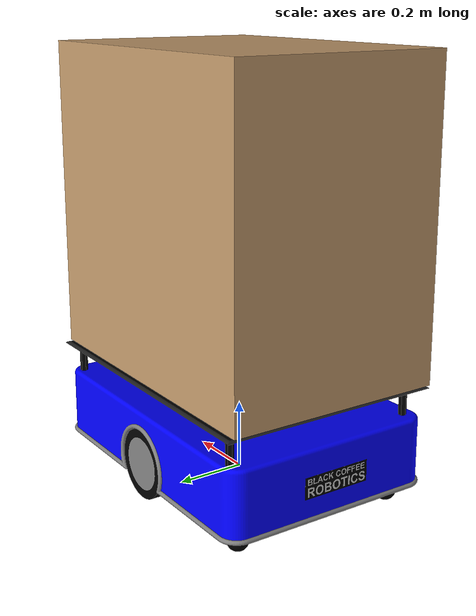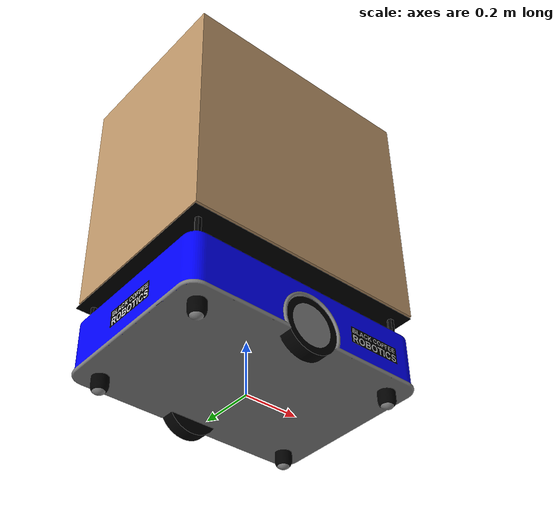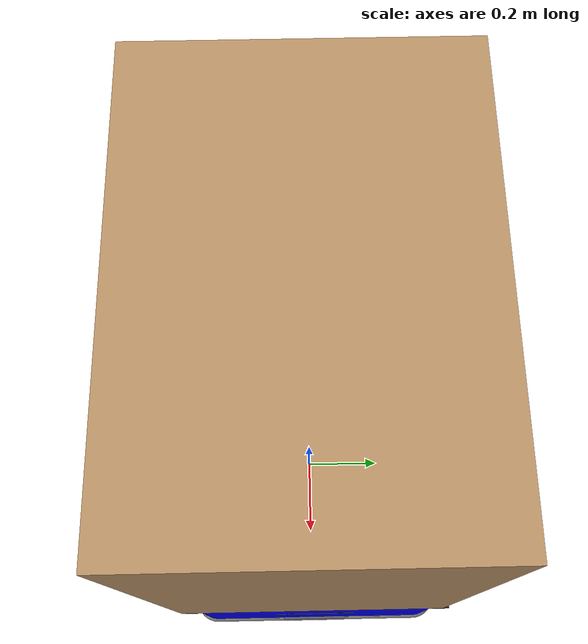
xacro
<?xml version="1.0"?>
<robot xmlns:xacro="http://www.ros.org/wiki/xacro" name="carga_bot">

    <!--................................ XACRO CONSTANTS .............................. -->

    <xacro:property name="chassis_mass" value="70"/>
    <xacro:property name="chassis_length" value="0.9"/>
    <xacro:property name="chassis_width" value="0.64"/>
    <xacro:property name="chassis_height" value="0.19"/>

    <xacro:property name="traction_wheel_mass" value="1"/>
    <xacro:property name="traction_wheel_base" value="0.88"/>
    <xacro:property name="traction_max_wheel_torque" value="20000"/>
    <xacro:property name="traction_wheel_friction" value="5.0"/>

    <xacro:property name="trolley_wheel_mass" value="0.1"/>
    <xacro:property name="trolley_track_width" value="0.54"/>
    <xacro:property name="trolley_wheel_friction" value="0.0"/>
    <xacro:property name="trolley_wheel_radius" value="0.06"/>
    <!-- a small constant -->
    <xacro:property name="eps" value="0.002"/>

    <xacro:property name="traction_wheel_radius" value="0.1"/>
    <xacro:property name="traction_wheel_width" value="0.05"/>
    <xacro:property name="traction_track_width" value="0.6"/>

    <xacro:property name="two_d_lidar_update_rate" value="30"/>
    <xacro:property name="two_d_lidar_sample_size" value="361"/>
    <xacro:property name="two_d_lidar_min_angle" value="0"/>
    <xacro:property name="two_d_lidar_max_angle" value="360"/>
    <xacro:property name="two_d_lidar_min_range" value="0.55"/>
    <xacro:property name="two_d_lidar_max_range" value="16"/>

    <xacro:property name="camera_baseline" value="0.06"/>
    <xacro:property name="camera_height" value="0.10"/>
    <xacro:property name="camera_horizontal_fov" value="60"/>

    <xacro:arg name="robot_namespace" default=""/>
    <xacro:arg name="wheel_odom_topic" default="odom" />
    <xacro:arg name="camera_enabled" default="false" />
    <xacro:arg name="stereo_camera_enabled" default="false" />
    <xacro:arg name="two_d_lidar_enabled" default="false" />
    <xacro:arg name="publish_wheel_odom_tf" default="true" />
    <xacro:arg name="conveyor_enabled" default="false"/>
    <xacro:arg name="ground_truth_frame" default="map"/>
    <xacro:arg name="sim_gazebo" default="false" />
    <xacro:arg name="sim_ign" default="false" />
    <xacro:arg name="sim_gz" default="false" />
    <xacro:arg name="odometry_source" default="world" />

    <xacro:property name="odometry_source" value="$(arg odometry_source)"/>

    <!-- ............................... LOAD MACROS ................................. -->

    <xacro:include filename="$(find carga_bot)/urdf/materials.xacro"/>
    <xacro:include filename="$(find carga_bot)/urdf/macros.xacro"/>

    <xacro:if value="$(arg sim_gazebo)">
        <xacro:include filename="$(find carga_bot)/urdf/gazebo.xacro"/>
    </xacro:if>

    <xacro:if value="$(arg sim_ign)">
        <xacro:include filename="$(find carga_bot)/urdf/ign.xacro"/>
    </xacro:if>

    <xacro:if value="$(arg sim_gz)">
        <xacro:include filename="$(find carga_bot)/urdf/gz.xacro"/>
    </xacro:if>

    <!-- ................................ BASE LINK .................................. -->
    <link name="base_footprint"/>

    <link name="base_link"/>

    <joint name="base_joint" type="fixed">
        <parent link="base_footprint"/>
        <child link="base_link"/>
        <origin xyz="0.0 0 ${chassis_height/2 + traction_wheel_radius}" rpy="0 0 0.0" />
    </joint>

    <link name="chassis_link">

        <collision>
            <origin xyz="0 0 -0.05" rpy="0 0 0" />
            <geometry>
                <box size="${chassis_length} ${chassis_width} ${chassis_height}"/>
            </geometry>
        </collision>

        <visual>
            <origin xyz="0 0 -0.205" rpy="0 0 0" />
            <geometry>
                <mesh filename="file://$(find carga_bot)/meshes/carga_bot_mesh.dae" scale="1 1 1"/>
            </geometry>
        </visual>

        <inertial>
            <mass value="${chassis_mass}" />
            <xacro:box_inertia m="${chassis_mass}" x="${chassis_length}" y="${chassis_width}" z = "${chassis_height}"/>
        </inertial>

    </link>

    <joint name="chassis_joint" type="fixed">
        <parent link="base_link"/>
        <child link="chassis_link"/>
        <origin xyz="0.0 0 0" rpy="0 0 0.0" />
    </joint>

    <!-- ................................ WHEELS ..................................... -->

    <xacro:trolley_wheel cardinality="front" dexterity="left" origin_x="${chassis_length/2}" origin_y="${trolley_track_width/2}" origin_z="-${trolley_wheel_radius+chassis_height/2}"/>
    <xacro:trolley_wheel cardinality="front" dexterity="right" origin_x="${chassis_length/2}" origin_y="-${trolley_track_width/2}" origin_z="-${trolley_wheel_radius+chassis_height/2}"/>

    <xacro:trolley_wheel cardinality="back" dexterity="left" origin_x="-${chassis_length/2}" origin_y="${trolley_track_width/2}" origin_z="-${trolley_wheel_radius+chassis_height/2}"/>
    <xacro:trolley_wheel cardinality="back" dexterity="right" origin_x="-${chassis_length/2}" origin_y="-${trolley_track_width/2}" origin_z="-${trolley_wheel_radius+chassis_height/2}"/>

    <xacro:traction_wheel cardinality="middle" dexterity="left" origin_x="0" origin_y="${traction_track_width/2}" origin_z="-${chassis_height/2+2*trolley_wheel_radius+eps-traction_wheel_radius}"/>
    <xacro:traction_wheel cardinality="middle" dexterity="right" origin_x="0" origin_y="-${traction_track_width/2}" origin_z="-${chassis_height/2+2*trolley_wheel_radius+eps-traction_wheel_radius}"/>

    <!-- ............................. 2D LIDAR ........................................ -->

    <xacro:if value="$(arg two_d_lidar_enabled)">

        <link name="two_d_lidar">
            <collision>
                <origin xyz="0 0 0" rpy="0 0 0" />
                <geometry>
                    <cylinder length="0.06" radius="0.075"/>
                </geometry>
            </collision>

            <visual>
                <origin xyz="0 0 0" rpy="0 0 0" />
                <geometry>
                    <cylinder length="0.06" radius="0.075"/>
                </geometry>
                <material name="aluminium"/>
            </visual>

            <inertial>
                <origin xyz="0 0 0" rpy="0 0 0" />
                <mass value="0.1"/>
                <xacro:cylinder_inertia m="0.1" r="0.075" h="0.06"/>
            </inertial>
        </link>

        <joint name="two_d_lidar_joint" type="fixed">
            <parent link="base_link"/>
            <child link="two_d_lidar"/>
            <origin xyz="0.0 0 0.08" rpy="0 0 0" />
        </joint>

        <gazebo reference="two_d_lidar">
            <material>Gazebo/White</material>
        </gazebo>

    </xacro:if>

    <!-- ............................. IMU ........................................ -->

    <link name="imu_frame"/>

    <joint name="imu_joint" type="fixed">
        <parent link="base_link"/>
        <child link="imu_frame"/>
        <origin xyz="0.0 0.0 0.08" rpy="0.0 0.0 0.0"/>
    </joint>

    <!-- ............................. CAMERA ........................................ -->

    <xacro:if value="$(arg camera_enabled)">

        <!-- KINECT CAMERA -->

        <link name="kinect_camera">

            <collision>
                <origin xyz="0 0 0" rpy="0 0 0" />
                <geometry>
                    <box size="0.07 0.3 0.09"/>
                </geometry>
            </collision>

            <visual>
                <origin xyz="0 0 0" rpy="0 0 0" />
                <geometry>
                    <mesh filename="file://$(find carga_bot)/meshes/kinect/d415.dae"/>
                </geometry>
                <material name="black"/>
            </visual>

            <inertial>
                <mass value="0.01"/>
                <xacro:box_inertia m="0.01" x="0.07" y="0.3" z = "0.09"/>
            </inertial>

        </link>

        <joint name="kinect_camera_joint" type="fixed">
            <origin rpy="0 0 0" xyz="${chassis_length/2} 0 ${chassis_height/7}"/>
            <parent link="base_link"/>
            <child link="kinect_camera"/>
        </joint>

        <link name="kinect_camera_optical"/>

        <joint name="kinect_camera_optical_joint" type="fixed">
            <origin xyz="0 0 0" rpy="${-pi/2} 0 ${-pi/2}"/>
            <parent link="kinect_camera"/>
            <child link="kinect_camera_optical"/>
        </joint>

    </xacro:if>

    <!-- .............................STEREO CAMERA ........................................ -->

    <xacro:if value="$(arg stereo_camera_enabled)">

        <!-- STEREO CAMERA -->

        <link name="stereo_camera">

            <collision>
                <origin xyz="0 0 0" rpy="0 0 0" />
                <geometry>
                    <box size="0.07 0.3 0.09"/>
                </geometry>
            </collision>

            <visual>
                <origin xyz="0 0 0" rpy="0 0 0" />
                <geometry>
                    <mesh filename="file://$(find carga_bot)/meshes/kinect/d415.dae"/>
                </geometry>
                <material name="black"/>
            </visual>

            <inertial>
                <mass value="0.01"/>
                <xacro:box_inertia m="0.01" x="0.07" y="0.3" z = "0.09"/>
            </inertial>

        </link>

        <joint name="stereo_camera_joint" type="fixed">
            <origin rpy="0 0 0" xyz="${chassis_length/2} 0 ${chassis_height/7}"/>
            <parent link="base_link"/>
            <child link="stereo_camera"/>
        </joint>

        <link name="stereo_camera_optical"/>

        <joint name="stereo_camera_optical_joint" type="fixed">
            <origin xyz="0 0 0" rpy="${-pi/2} 0 ${-pi/2}"/>
            <parent link="stereo_camera"/>
            <child link="stereo_camera_optical"/>
        </joint>

    </xacro:if>

    <!-- ............................. ROOF ........................................ -->

    <link name="roof_link">

        <collision>
            <origin xyz="0 0 0" rpy="0 0 0" />
            <geometry>
                <box size="${chassis_length} ${chassis_width} 0.015"/>
            </geometry>
        </collision>

        <inertial>
            <mass value="1"/>
            <xacro:box_inertia m="1" x="1" y="0.6" z = "0.015"/>
        </inertial>

    </link>

    <joint name="roof joint" type="fixed">
        <parent link="chassis_link"/>
        <child link="roof_link"/>
        <origin xyz="0 0 0.16" rpy="0 0 0" />
    </joint>

    <!-- ............................. CARGA ........................................ -->
    <link name= "carga_link">
        <visual>
                <origin xyz="0 0 0" rpy="0 0 0" />
                <geometry>
                    <box size= "${chassis_length} ${chassis_width} 0.9"/>
                </geometry>
                <material name="carton"/>
        </visual>

        <inertial>
            <mass value="1"/>
            <xacro:box_inertia m="50" x="1" y="0.6" z = "0.9"/>
        </inertial>
    </link>

    <joint name="carga_joint" type="fixed">
        <parent link="chassis_link"/>
        <child link="carga_link"/>
        <origin xyz="0 0 ${chassis_height/2+0.49}" rpy="0 0 0.0" />
    </joint>

    <!-- ............................. CONVEYOR ........................................ -->

    <xacro:if value="$(arg conveyor_enabled)">

        <link name="conveyor_belt">

            <collision>
                <origin xyz="0 0 0" rpy="0 0 0" />
                <geometry>
                    <box size="1 0.6 0.015"/>
                </geometry>
            </collision>

            <visual>
                <origin xyz="0 0 0" rpy="0 0 0"/>
                <geometry>
                    <box size="1 0.6 0.015"/>
                </geometry>
            </visual>

            <inertial>
                <mass value="1"/>
                <xacro:box_inertia m="1" x="1" y="0.6" z = "0.015"/>
            </inertial>

        </link>

        <joint name="conveyor_joint" type="fixed">
            <parent link="base_link"/>
            <child link="conveyor_belt"/>
            <origin xyz="0 0 0.25" rpy="0 0 0" />
        </joint>

    </xacro:if>

</robot>

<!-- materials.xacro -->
<robot xmlns:xacro="http://www.ros.org/wiki/xacro" name="carga_bot">

    <material name="black">
        <color rgba="0.0 0.0 0.0 1.0"/>
    </material>

    <material name="blue">
        <color rgba="0.0 0.0 0.8 1.0"/>
    </material>

    <material name="green">
        <color rgba="0.0 0.8 0.0 1.0"/>
    </material>

    <material name="yellow">
        <color rgba="1.0 1.0 0.0 1.0"/>
    </material>

    <material name="dark_grey">
        <color rgba="0.2 0.2 0.2 1.0"/>
    </material>

    <material name="orange">
        <color rgba="${255/255} ${108/255} ${10/255} 1.0"/>
    </material>

    <material name="brown">
        <color rgba="${139/255} ${69/255} ${19/255} 1.0"/>
    </material>

    <material name="red">
        <color rgba="0.8 0.0 0.0 1.0"/>
    </material>

    <material name="turquoise">
        <color rgba="${64/255} ${224/255} ${208/255} 1.0"/>
    </material>

    <material name="purple">
        <color rgba="${128/255} ${0/255} ${128/255} 1.0"/>
    </material>

    <material name="white">
        <color rgba="1.0 1.0 1.0 1.0"/>
    </material>

    <material name="aluminium">
        <color rgba="0.5 0.5 0.5 1"/>
    </material>

    <material name="plastic">
        <color rgba="0.1 0.1 0.1 1"/>
    </material>

    <material name="carton">
        <color rgba="0.76 0.60 0.42 1.0"/>
    </material>

</robot>

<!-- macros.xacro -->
<robot xmlns:xacro="http://www.ros.org/wiki/xacro" name="carga_bot">

    <!--................................ INERTIA MATRICES .............................. -->

    <xacro:macro name="cylinder_inertia" params="m r h">
        <inertia ixx="${m * (3 * r * r + h * h) / 12}" ixy="0" ixz="0" iyy="${m * (3 * r * r + h * h) / 12}" iyz="0" izz="${m * r * r / 2}" />
    </xacro:macro>

    <xacro:macro name="box_inertia" params="m x y z">
        <inertia ixx="${m * (y * y + z * z) / 12}" ixy="0" ixz="0" iyy="${m * (x * x + z * z) / 12}" iyz="0" izz="${m * (y * y + x * x) / 12}" />
    </xacro:macro>

    <xacro:macro name="sphere_inertia" params="m r">
        <inertia ixx="${2 * m * r * r / 5}" ixy="0" ixz="0" iyy="${2 * m * r * r / 5}" iyz="0" izz="${2 * m * r * r / 5}" />
    </xacro:macro>

    <!-- ............................... TROLLEY WHEEL DEFINITION .............................. -->

    <xacro:macro name="trolley_wheel" params="cardinality dexterity origin_x origin_y origin_z">
        <link name="${cardinality}_${dexterity}_wheel">
            <collision>
                <origin xyz="0 0 0" rpy="0 ${pi/2} ${pi/2}" />
                <geometry>
                    <sphere radius="${trolley_wheel_radius}"/>
                </geometry>
            </collision>

            <inertial>
                <origin xyz="0 0 0" rpy="0 0 0" />
                <mass value="${trolley_wheel_mass}"/>
                <xacro:sphere_inertia m="${trolley_wheel_mass}" r="${trolley_wheel_radius}"/>
            </inertial>

            <mu>0.0</mu>
        </link>

        <joint name="${cardinality}_${dexterity}_wheel_joint" type="fixed">
            <parent link="base_link"/>
            <child link="${cardinality}_${dexterity}_wheel"/>
            <origin xyz="${origin_x} ${origin_y} ${origin_z}" rpy="0 0 0" />
            <axis xyz="0 1 0" rpy="0 0 0" />
        </joint>

        <gazebo reference="${cardinality}_${dexterity}_wheel">
            <material>Gazebo/Black</material>
        </gazebo>
    </xacro:macro>

    <xacro:macro name="traction_wheel" params="cardinality dexterity origin_x origin_y origin_z">
        <link name="${cardinality}_${dexterity}_wheel">
            <collision>
                <origin xyz="0 0 0" rpy="0 ${pi/2} ${pi/2}" />
                <geometry>
                    <cylinder length="${traction_wheel_width}" radius="${traction_wheel_radius}"/>
                </geometry>
                <self_collide>false</self_collide>
            </collision>

            <inertial>
                <origin xyz="0 0 0" rpy="0 ${pi/2} ${pi/2}" />
                <mass value="${traction_wheel_mass}"/>
                <xacro:cylinder_inertia m="${traction_wheel_mass}" r="${traction_wheel_radius}" h="${traction_wheel_width}"/>
            </inertial>

            <mu>5.0</mu>
        </link>

        <joint name="${cardinality}_${dexterity}_wheel_joint" type="continuous">
            <parent link="base_link"/>
            <child link="${cardinality}_${dexterity}_wheel"/>
            <origin xyz="${origin_x} ${origin_y} ${origin_z}" rpy="0 0 0" />
            <axis xyz="0 1 0" rpy="0 0 0" />
        </joint>

        <gazebo reference="${cardinality}_${dexterity}_wheel">
            <material>Gazebo/Black</material>
        </gazebo>
    </xacro:macro>

</robot>
